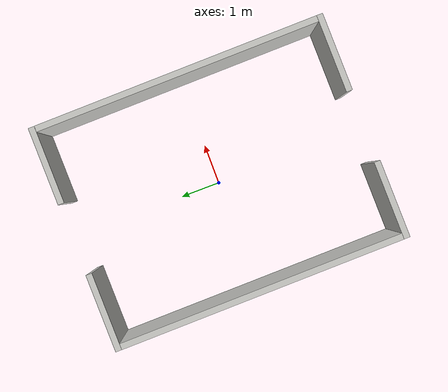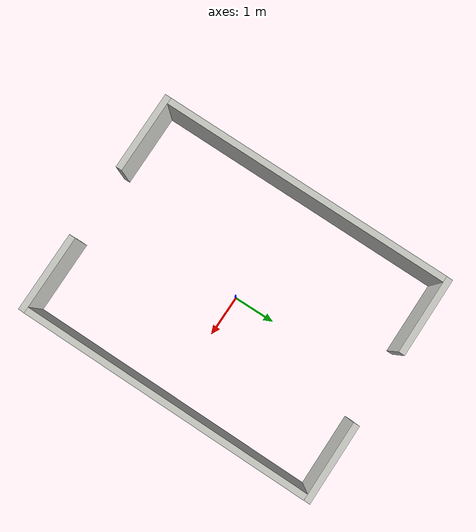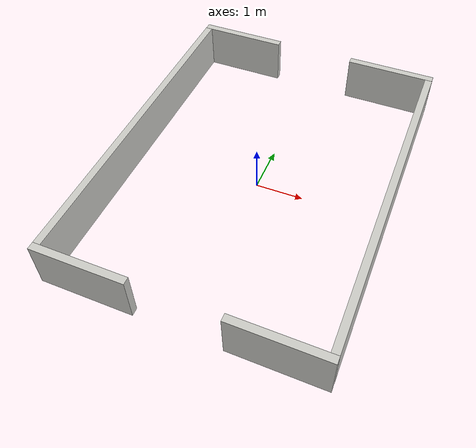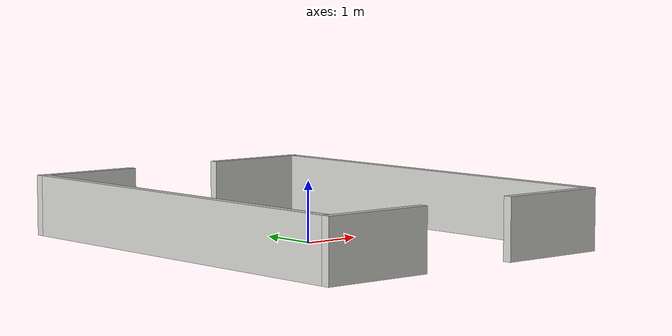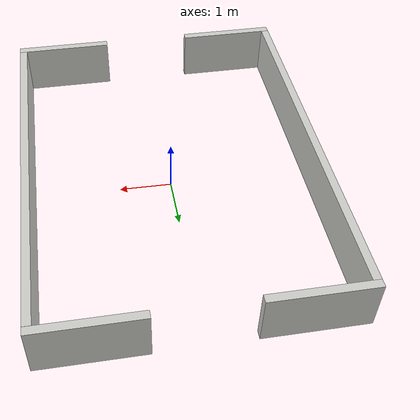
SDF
<?xml version='1.0'?>
<sdf version='1.6'>
  <model name='room_3x4'>
    <static>1</static>
    <pose frame=''>0 0 0 0 -0 0</pose>
    <link name='Wall_1'>
      <collision name='Wall_1_Collision'>
        <geometry>
          <box>
            <size>7 0.15 1.0</size>
          </box>
        </geometry>
        <pose frame=''>0 0 0.5 0 -0 0</pose>
      </collision>
      <visual name='Wall_1_Visual'>
        <pose frame=''>0 0 0.5 0 -0 0</pose>
        <geometry>
          <box>
            <size>7 0.15 1.0</size>
          </box>
        </geometry>
        <material>
          <script>
            <uri>file://media/materials/scripts/gazebo.material</uri>
            <name>Gazebo/CeilingTiled</name>
          </script>
          <ambient>1 0.764706 0.305882 1</ambient>
        </material>
      </visual>
      <pose frame=''>-2.69862 -0.000423 0 0 0 -1.5708</pose>
    </link>
    <link name='Wall_2'>
      <collision name='Wall_2_Collision'>
        <geometry>
          <box>
            <size>7 0.15 1.0</size>
          </box>
        </geometry>
        <pose frame=''>0 0 0.5 0 -0 0</pose>
      </collision>
      <visual name='Wall_2_Visual'>
        <pose frame=''>0 0 0.5 0 -0 0</pose>
        <geometry>
          <box>
            <size>7 0.15 1.0</size>
          </box>
        </geometry>
        <material>
          <script>
            <uri>file://media/materials/scripts/gazebo.material</uri>
            <name>Gazebo/CeilingTiled</name>
          </script>
          <ambient>1 0.764706 0.305882 1</ambient>
        </material>
      </visual>
      <pose frame=''>2.69862 -0.000308 0 0 0 -1.5708</pose>
    </link>
    <link name='Wall_3'>
      <collision name='Wall_3_Collision'>
        <geometry>
          <box>
            <size>1.9 0.15 1.0</size>
          </box>
        </geometry>
        <pose frame=''>0 0 0.5 0 -0 0</pose>
      </collision>
      <visual name='Wall_3_Visual'>
        <pose frame=''>0 0 0.5 0 -0 0</pose>
        <geometry>
          <box>
            <size>1.9 0.15 1.0</size>
          </box>
        </geometry>
        <material>
          <script>
            <uri>file://media/materials/scripts/gazebo.material</uri>
            <name>Gazebo/CeilingTiled</name>
          </script>
          <ambient>1 0.764706 0.305882 1</ambient>
        </material>
      </visual>
      <pose frame=''>-1.82276 -3.57547 0 0 -0 0</pose>
    </link>
    <link name='Wall_4'>
      <collision name='Wall_4_Collision'>
        <geometry>
          <box>
            <size>1.9 0.15 1.0</size>
          </box>
        </geometry>
        <pose frame=''>0 0 0.5 0 -0 0</pose>
      </collision>
      <visual name='Wall_4_Visual'>
        <pose frame=''>0 0 0.5 0 -0 0</pose>
        <geometry>
          <box>
            <size>1.9 0.15 1.0</size>
          </box>
        </geometry>
        <material>
          <script>
            <uri>file://media/materials/scripts/gazebo.material</uri>
            <name>Gazebo/CeilingTiled</name>
          </script>
          <ambient>1 0.764706 0.305882 1</ambient>
        </material>
      </visual>
      <pose frame=''>-1.82217 3.57448 0 0 -0 0</pose>
    </link>
    <link name='Wall_5'>
      <collision name='Wall_5_Collision'>
        <geometry>
          <box>
            <size>1.9 0.15 1.0</size>
          </box>
        </geometry>
        <pose frame=''>0 0 0.5 0 -0 0</pose>
      </collision>
      <visual name='Wall_5_Visual'>
        <pose frame=''>0 0 0.5 0 -0 0</pose>
        <geometry>
          <box>
            <size>1.9 0.15 1.0</size>
          </box>
        </geometry>
        <material>
          <script>
            <uri>file://media/materials/scripts/gazebo.material</uri>
            <name>Gazebo/CeilingTiled</name>
          </script>
          <ambient>1 0.764706 0.305882 1</ambient>
        </material>
      </visual>
      <pose frame=''>1.82197 3.57547 0 0 -0 0</pose>
    </link>
    <link name='Wall_6'>
      <collision name='Wall_6_Collision'>
        <geometry>
          <box>
            <size>1.9 0.15 1.0</size>
          </box>
        </geometry>
        <pose frame=''>0 0 0.5 0 -0 0</pose>
      </collision>
      <visual name='Wall_6_Visual'>
        <pose frame=''>0 0 0.5 0 -0 0</pose>
        <geometry>
          <box>
            <size>1.9 0.15 1.0</size>
          </box>
        </geometry>
        <material>
          <script>
            <uri>file://media/materials/scripts/gazebo.material</uri>
            <name>Gazebo/CeilingTiled</name>
          </script>
          <ambient>1 0.764706 0.305882 1</ambient>
        </material>
      </visual>
      <pose frame=''>1.82281 -3.57503 0 0 -0 0</pose>
    </link>
  </model>
</sdf>
